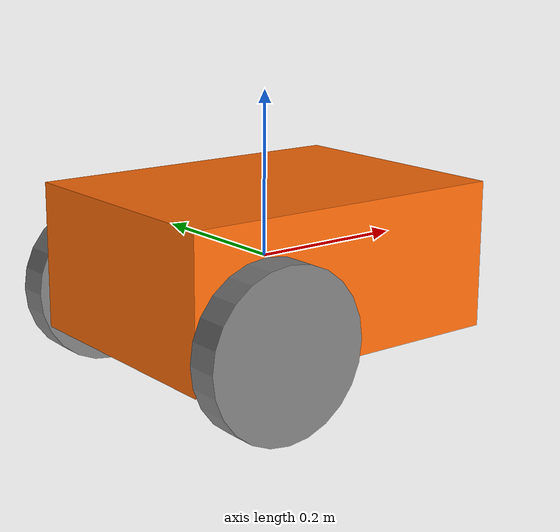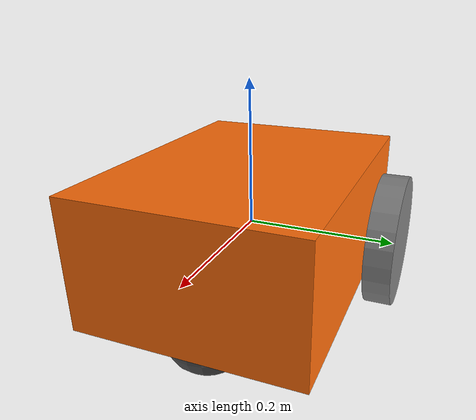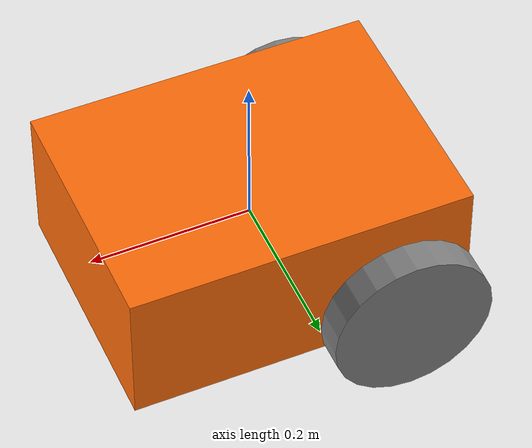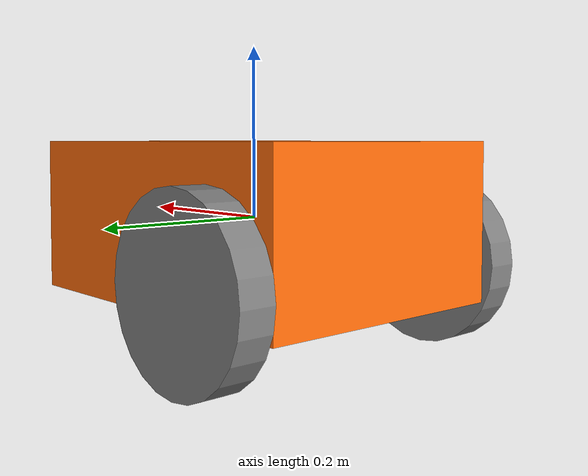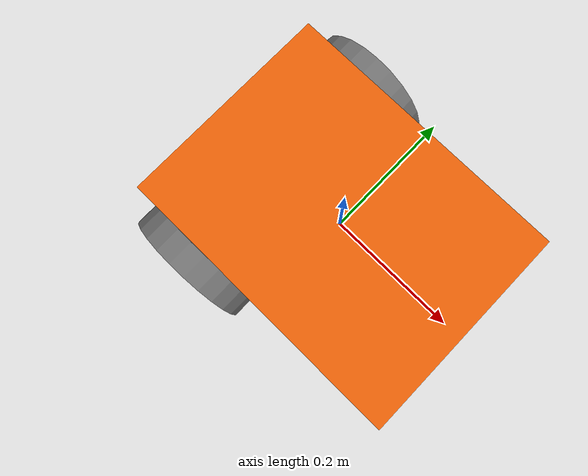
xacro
<?xml version="1.0"?>
<robot name="Tame_bot" xmlns:xacro="http://ros.org/wiki/xacro">

    <xacro:include filename="macros.xacro"/>

    <!-- Define robot constants -->
    <xacro:property name="base_width" value="0.31"/>
    <xacro:property name="base_length" value="0.42"/>
    <xacro:property name="base_height" value="0.18"/>

    <xacro:property name="wheel_radius" value="0.10"/>
    <xacro:property name="wheel_width" value="0.04"/>
    <xacro:property name="wheel_ygap" value="0.025"/>
    <xacro:property name="wheel_zoff" value="0.05"/>
    <xacro:property name="wheel_xoff" value="0.12"/>

    <xacro:property name="caster_xoff" value="0.14"/>

      <!-- Robot Base -->
    <xacro:insert_box name="base_link" mass = "15" color = "orange">
        <origin xyz="0.0 0.0 0.0" rpy="0.0 0.0 0.0"/>
    </xacro:insert_box>

    <!-- Robot Footprint -->
    <link name="base_footprint"/>

    <joint name="base_joint" type="fixed">
        <parent link="base_link"/>
        <child link="base_footprint"/>
        <origin xyz="0.0 0.0 ${-(wheel_radius+wheel_zoff)}" rpy="0 0 0"/>
    </joint>

      <!-- Wheels -->

    <xacro:wheel prefix="drivewhl_l" x_reflect="-1" y_reflect="1" color="grey"/>
    <xacro:wheel prefix="drivewhl_r" x_reflect="-1" y_reflect="-1" color="grey" />

      <!-- Caster Wheel -->
    <link name="front_caster">
        <visual>
        <geometry>
            <sphere radius="${(wheel_radius+wheel_zoff-(base_height/2))}"/>
        </geometry>
        <material name="dark"/>
        </visual>
        <collision>
            <origin xyz="0 0 0" rpy="0 0 0"/>
            <geometry>
                <sphere radius="${(wheel_radius+wheel_zoff-(base_height/2))}"/>
            </geometry>
        </collision>
        <xacro:sphere_inertia m="0.5" r="${(wheel_radius+wheel_zoff-(base_height/2))}"/>
    </link>

    <joint name="caster_joint" type="fixed">
        <parent link="base_link"/>
        <child link="front_caster"/>
        <origin xyz="${caster_xoff} 0.0 ${-(base_height/2)}" rpy="0 0 0"/>
    </joint>

</robot>

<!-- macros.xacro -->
<robot xmlns:xacro="http://www.ros.org/wiki/xacro">

    <!-- Define robot constants -->
    <xacro:property name="base_width" value="0.31"/>
    <xacro:property name="base_length" value="0.42"/>
    <xacro:property name="base_height" value="0.18"/>

    <xacro:property name="wheel_radius" value="0.10"/>
    <xacro:property name="wheel_width" value="0.04"/>
    <xacro:property name="wheel_ygap" value="0.025"/>
    <xacro:property name="wheel_zoff" value="0.05"/>
    <xacro:property name="wheel_xoff" value="0.12"/>

    <xacro:property name="caster_xoff" value="0.14"/>

    <!-- Colors-->
    <material name="black">
        <color rgba="0.0 0.0 0.0 1.0"/>
    </material>

    <material name="dark">
        <color rgba="0.3 0.3 0.3 1.0"/>
    </material>

    <material name="light_black">
        <color rgba="0.4 0.4 0.4 1.0"/>
    </material>

    <material name="blue">
        <color rgba="0.0 0.0 0.8 1.0"/>
    </material>

    <material name="green">
        <color rgba="0.0 0.8 0.0 1.0"/>
    </material>

    <material name="grey">
        <color rgba="0.5 0.5 0.5 1.0"/>
    </material>

    <material name="orange">
        <color rgba="1.0 0.4235 0.0392 1.0"/>
    </material>

    <material name="brown">
        <color rgba="0.8706 0.8118 0.7647 1.0"/>
    </material>

    <material name="red">
        <color rgba="0.8 0.0 0.0 1.0"/>
    </material>

    <material name="white">
        <color rgba="1.0 1.0 1.0 1.0"/>
    </material>

    <!--macros-->
      <!-- Define intertial property macros  -->
    <xacro:macro name="box_inertia" params="mass x y z *origin">
        <inertial>
            <xacro:insert_block name="origin"/>
            <mass value="${mass}" />
            <inertia ixx="${(1/12) * mass * (y*y+z*z)}" ixy="0.0" ixz="0.0"
                    iyy="${(1/12) * mass * (x*x+z*z)}" iyz="0.0"
                    izz="${(1/12) * mass * (x*x+y*y)}" />
        </inertial>
    </xacro:macro>

    <xacro:macro name="cylinder_inertia" params="m r h">
        <inertial>
        <origin xyz="0 0 0" rpy="${pi/2} 0 0" />
        <mass value="${m}"/>
        <inertia ixx="${(m/12) * (3*r*r + h*h)}" ixy = "0" ixz = "0" iyy="${(m/12) * (3*r*r + h*h)}" iyz = "0" izz="${(m/2) * (r*r)}"/>
        </inertial>
    </xacro:macro>

    <xacro:macro name="sphere_inertia" params="m r">
        <inertial>
        <mass value="${m}"/>
        <inertia ixx="${(2/5) * m * (r*r)}" ixy="0.0" ixz="0.0" iyy="${(2/5) * m * (r*r)}" iyz="0.0" izz="${(2/5) * m * (r*r)}"/>
        </inertial>
    </xacro:macro>

    <!-- Box -->
    <xacro:macro name = "insert_box" params = "name mass color *origin">
        <link name="${name}">
            <visual>
                <geometry>
                    <box size="${base_length} ${base_width} ${base_height}"/>
                </geometry>
                <material name="${color}"/>
            </visual>
            <xacro:box_inertia mass="${mass}" x="${base_length}" y="${base_width}" z="${base_height}">
                <xacro:insert_block name="origin"/>
            </xacro:box_inertia>
            <collision>
                <xacro:insert_block name="origin"/>
                <geometry>
                    <box size="${base_length} ${base_width} ${base_height}"/>
                </geometry>
            </collision>
        </link>
    </xacro:macro>

    <!-- Cylinder-->
    <xacro:macro name = "insert_cylinder" params = "name mass length radius color *origin">
        <link name="${name}">
            <inertial>
                <xacro:insert_block name = "origin" />
                <mass value="${mass}"/>
                <inertia ixx="${(1/12) * mass * (3*radius*radius + length*length)}" ixy="0.0" ixz="0.0"
                    iyy="${(1/12) * mass * (3*radius*radius + length*length)}" iyz="0.0"
                    izz="${(1/2) * mass * (radius*radius)}" />
            </inertial>
            <visual>
                <xacro:insert_block name = "origin" />
                <material name="${color}"/>
                <geometry>
                    <cylinder radius="${radius}" length="${length}"/>
                </geometry>
            </visual>
            <collision>
                <xacro:insert_block name = "origin" />
                <geometry>
                    <cylinder radius="${radius}" length="${length}"/>
                </geometry>
            </collision>
        </link>
    </xacro:macro>

    <!-- wheels -->
    <xacro:macro name="wheel" params="prefix x_reflect y_reflect color">
        <link name="${prefix}_link">
            <visual>
                <origin xyz="0 0 0" rpy="${pi/2} 0 0"/>
                <geometry>
                    <cylinder radius="${wheel_radius}" length="${wheel_width}"/>
                </geometry>
                <material name="${color}"/>
            </visual>
            <collision>
                <origin xyz="0 0 0" rpy="${pi/2} 0 0"/>
                <geometry>
                    <cylinder radius="${wheel_radius}" length="${wheel_width}"/>
                </geometry>
            </collision>

      <xacro:cylinder_inertia m="0.5" r="${wheel_radius}" h="${wheel_width}"/>
        </link>

        <joint name="${prefix}_joint" type="continuous">
        <parent link="base_link"/>
        <child link="${prefix}_link"/>
        <origin xyz="${x_reflect*wheel_xoff} ${y_reflect*(base_width/2+wheel_ygap)} ${-wheel_zoff}" rpy="0 0 0"/>
        <axis xyz="0 1 0"/>
        </joint>
    </xacro:macro>

</robot>
